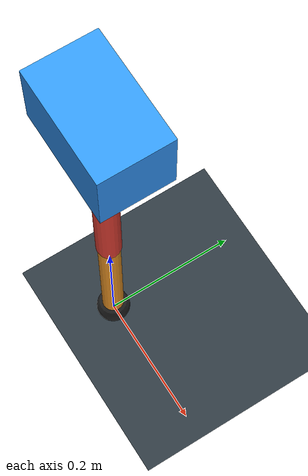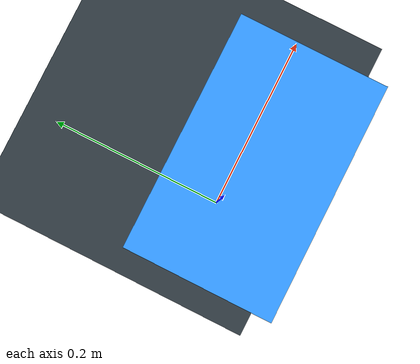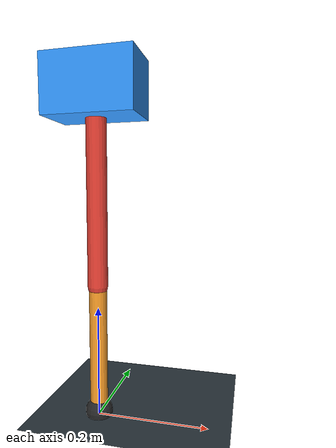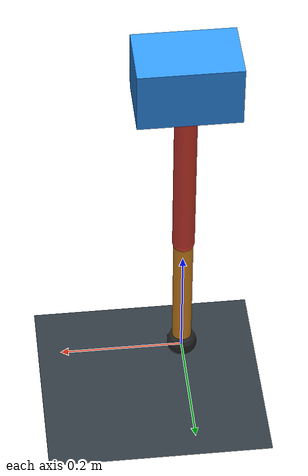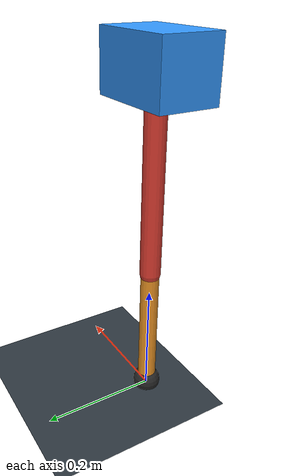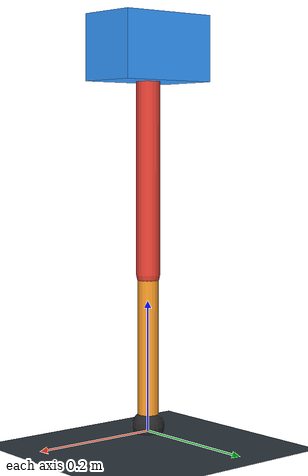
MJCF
<mujoco model="single_axis_two_bar">
  <compiler angle="radian" inertiafromgeom="true"/>
  <option timestep="0.001" integrator="implicitfast" gravity="0 0 -9.81"/>
  <default>
    <joint damping="0.08"/>
    <geom friction="1.2 0.01 0.0001" condim="3"/>
  </default>
  <worldbody>
    <geom name="floor" type="plane" size="5 5 0.1" rgba="0.18 0.22 0.25 1"/>
    <body name="carriage" pos="0 0 0.5826541970680402">
      <joint name="pole_slide" type="slide" axis="0 0 1"/>
      <geom name="payload" type="box" size="0.08 0.05 0.05" mass="2.834547309288145" rgba="0.2 0.6 1 1"/>
      <body name="thigh" pos="0 0 0">
        <joint name="hip" type="hinge" axis="0 1 0"/>
        <geom name="thigh_link" type="capsule" fromto="0 0 0 0 0 -0.3424972921261633" size="0.018" mass="0.24403384634231148" rgba="0.9 0.25 0.2 1"/>
        <body name="shank" pos="0 0 -0.3424972921261633">
          <joint name="knee" type="hinge" axis="0 1 0"/>
          <geom name="shank_link" type="capsule" fromto="0 0 0 0 0 -0.2324039419645998" size="0.016" mass="0.16559087959692578" rgba="0.95 0.6 0.15 1"/>
          <geom name="foot" type="sphere" pos="0 0 -0.2324039419645998" size="0.025" mass="0.03" rgba="0.15 0.15 0.15 1"/>
          <site name="toe" pos="0 0 -0.2324039419645998" size="0.008"/>
        </body>
      </body>
    </body>
  </worldbody>
  <actuator>
    <motor name="hip_motor" joint="hip" ctrlrange="-47.63702269406611 47.63702269406611"/>
    <motor name="knee_motor" joint="knee" ctrlrange="-104.28208892795018 104.28208892795018"/>
  </actuator>
</mujoco>
